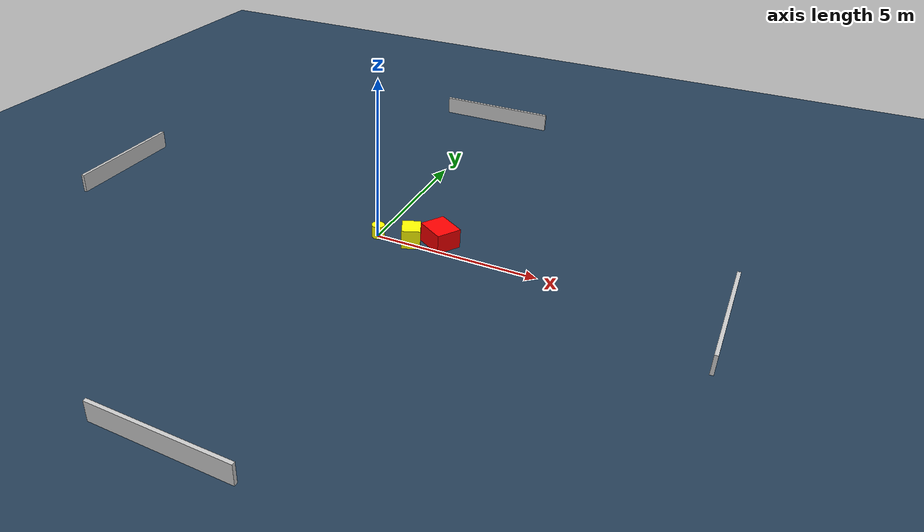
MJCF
<?xml version="1.0" ?>
<mujoco model="generated_environment">
  <option timestep="0.01" integrator="RK4" cone="elliptic"/>
  <default>
    <geom density="1"/>
  </default>
  <asset>
    <texture builtin="gradient" height="3072" name="skybox" rgb1="0.3 0.5 0.7" rgb2="0 0 0" type="skybox" width="512"/>
    <texture builtin="checker" height="300" name="groundplane" rgb1="0.2 0.3 0.4" rgb2="0.1 0.2 0.3" type="2d" width="300"/>
    <material name="groundplane" reflectance="0.2" texrepeat="5 5" texture="groundplane"/>
  </asset>
  <worldbody>
    <light dir="0 0 -1" directional="true" pos="0 0 1.5"/>
    <geom condim="3" friction="0.5 0.005 0.001" material="groundplane" name="floor" pos="0 0 0" size="0 0 0.05" type="plane"/>
    <body name="walls">
      <geom name="wall_1" condim="4" pos="-10.0 0.0 0.3" rgba="0.800000011920929 0.800000011920929 0.800000011920929 1.0" size="0.05 2.0 0.3" type="box"/>
      <geom name="wall_2" condim="4" pos="10.0 0.0 0.3" rgba="0.800000011920929 0.800000011920929 0.800000011920929 1.0" size="0.05 2.0 0.3" type="box"/>
      <geom name="wall_3" condim="4" pos="0.0 -10.0 0.3" rgba="0.800000011920929 0.800000011920929 0.800000011920929 1.0" size="2.0 0.05 0.3" type="box"/>
      <geom name="wall_4" condim="4" pos="0.0 10.0 0.3" rgba="0.800000011920929 0.800000011920929 0.800000011920929 1.0" size="2.0 0.05 0.3" type="box"/>
    </body>
    <body name="robot">
      <joint name="joint_x" type="slide" pos="0 0 0" axis="1 0 0"/>
      <joint name="joint_y" type="slide" pos="0 0 0" axis="0 1 0"/>
      <geom name="robot" type="cylinder" pos="0.0 0.0 0.2" size="0.2 0.2 0.0" mass="5.0" friction="1.0 0.005 0.0001" condim="4" rgba="1.0 1.0 0.0 1.0"/>
    </body>
    <body name="obstacle_1_movable">
      <geom name="obstacle_1_movable" condim="4" pos="1.0734775506708019 0.06574738941592047 0.3" euler="0 0 203.4459322101685" friction="0.0 0.005 0.001" rgba="1.0 1.0 0.0 1.0" size="0.2790077057438778 0.319910002118613 0.3" type="box" mass="0.1"/>
      <joint type="free"/>
    </body>
    <body name="obstacle_2_static">
      <geom name="obstacle_2_static" condim="4" pos="1.8468763434187747 0.462897895769968 0.3" euler="0 0 237.66326046243233" friction="0.0 0.005 0.001" rgba="1.0 0.0 0.0 1.0" size="0.3974373735892355 0.45966909188638433 0.3" type="box"/>
    </body>
  </worldbody>
  <actuator>
    <motor name="actuator_x" joint="joint_x" gear="1" ctrlrange="-1 1"/>
    <motor name="actuator_y" joint="joint_y" gear="1" ctrlrange="-1 1"/>
  </actuator>
</mujoco>
